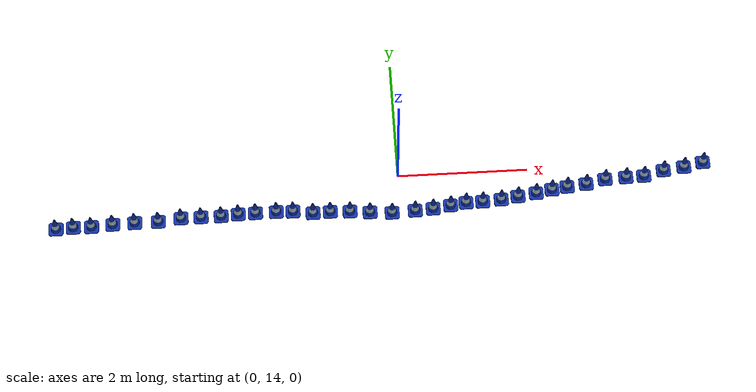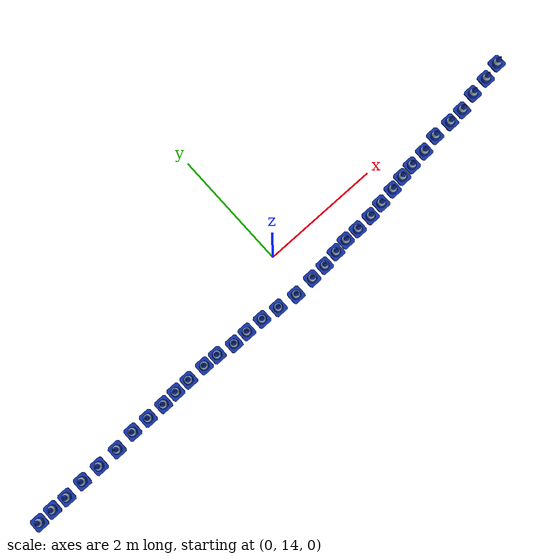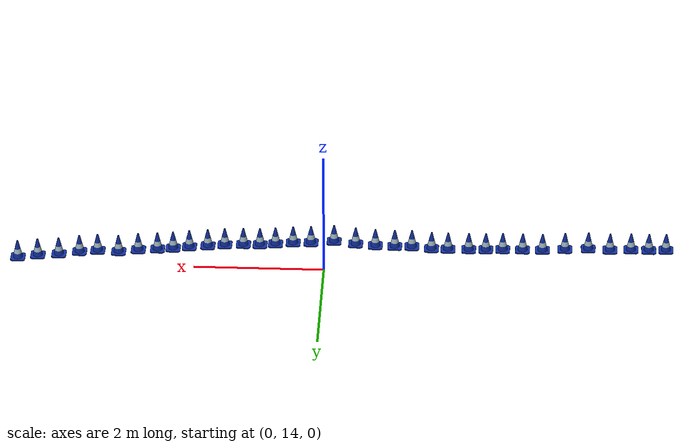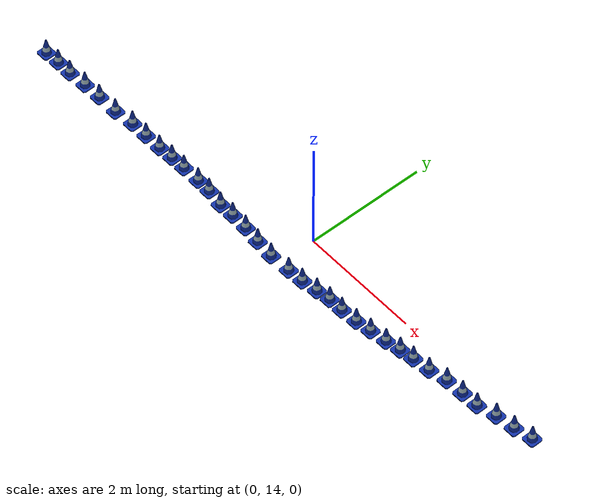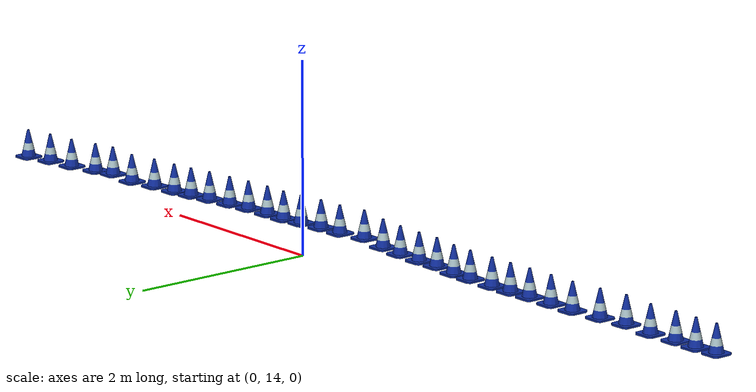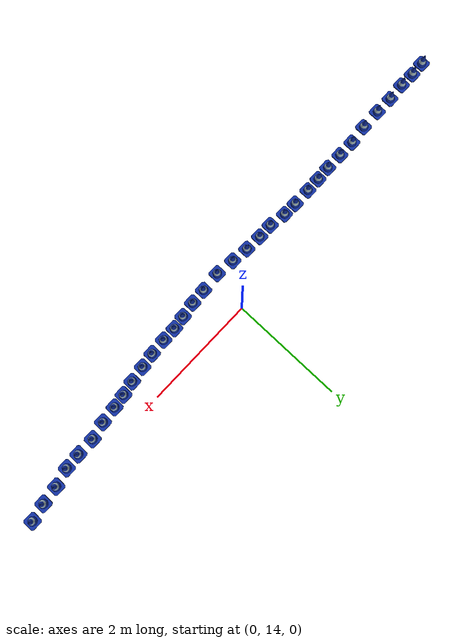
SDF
<sdf version="1.6">
 <model name="small_track">
  <link name="link_0_clone_3">
   <pose>-4.06552 13.3637 0.079001 0 -0 0</pose>
   <visual name="visual">
    <geometry><mesh><uri>model://eufs_description/meshes/cone_blue.dae</uri></mesh></geometry>
    <material><shader type="pixel"/></material>
   </visual>
  </link>
  <link name="link_0_clone_5">
   <pose>-0.131239 13.3125 0.079001 0 -0 0</pose>
   <visual name="visual">
    <geometry><mesh><uri>model://eufs_description/meshes/cone_blue.dae</uri></mesh></geometry>
    <material><shader type="pixel"/></material>
   </visual>
  </link>
  <link name="link_0_clone_62_clone_32">
   <pose>-5.26559 13.3306 0.063291 -0.001555 0.00019 -5.2e-05</pose>
   <visual name="visual">
    <geometry><mesh><uri>model://eufs_description/meshes/cone_blue.dae</uri></mesh></geometry>
    <material><shader type="pixel"/></material>
   </visual>
  </link>
  <link name="link_0_clone_62_clone_33">
   <pose>-5.00103 13.3437 0.063291 -0.001555 0.00019 -5.2e-05</pose>
   <visual name="visual">
    <geometry><mesh><uri>model://eufs_description/meshes/cone_blue.dae</uri></mesh></geometry>
    <material><shader type="pixel"/></material>
   </visual>
  </link>
  <link name="link_0_clone_62_clone_34">
   <pose>-4.72483 13.3408 0.063291 -0.001555 0.00019 -5.2e-05</pose>
   <visual name="visual">
    <geometry><mesh><uri>model://eufs_description/meshes/cone_blue.dae</uri></mesh></geometry>
    <material><shader type="pixel"/></material>
   </visual>
  </link>
  <link name="link_0_clone_62_clone_35">
   <pose>-4.40083 13.3623 0.063291 -0.001555 0.00019 -5.2e-05</pose>
   <visual name="visual">
    <geometry><mesh><uri>model://eufs_description/meshes/cone_blue.dae</uri></mesh></geometry>
    <material><shader type="pixel"/></material>
   </visual>
  </link>
  <link name="link_0_clone_62_clone_36">
   <pose>-0.467814 13.3483 0.063291 -0.001555 0.00019 -5.2e-05</pose>
   <visual name="visual">
    <geometry><mesh><uri>model://eufs_description/meshes/cone_blue.dae</uri></mesh></geometry>
    <material><shader type="pixel"/></material>
   </visual>
  </link>
  <link name="link_0_clone_62_clone_37">
   <pose>-0.773533 13.3816 0.063291 -0.001555 0.00019 -5.2e-05</pose>
   <visual name="visual">
    <geometry><mesh><uri>model://eufs_description/meshes/cone_blue.dae</uri></mesh></geometry>
    <material><shader type="pixel"/></material>
   </visual>
  </link>
  <link name="link_0_clone_62_clone_38">
   <pose>-1.07496 13.3931 0.063291 -0.001555 0.00019 -5.2e-05</pose>
   <visual name="visual">
    <geometry><mesh><uri>model://eufs_description/meshes/cone_blue.dae</uri></mesh></geometry>
    <material><shader type="pixel"/></material>
   </visual>
  </link>
  <link name="link_0_clone_62_clone_39">
   <pose>-1.33999 13.3874 0.063291 -0.001555 0.00019 -5.2e-05</pose>
   <visual name="visual">
    <geometry><mesh><uri>model://eufs_description/meshes/cone_blue.dae</uri></mesh></geometry>
    <material><shader type="pixel"/></material>
   </visual>
  </link>
  <link name="link_0_clone_62_clone_40">
   <pose>-1.64549 13.4317 0.063291 -0.001555 0.00019 -5.2e-05</pose>
   <visual name="visual">
    <geometry><mesh><uri>model://eufs_description/meshes/cone_blue.dae</uri></mesh></geometry>
    <material><shader type="pixel"/></material>
   </visual>
  </link>
  <link name="link_0_clone_62_clone_41">
   <pose>-1.90051 13.4388 0.063291 -0.001555 0.00019 -5.2e-05</pose>
   <visual name="visual">
    <geometry><mesh><uri>model://eufs_description/meshes/cone_blue.dae</uri></mesh></geometry>
    <material><shader type="pixel"/></material>
   </visual>
  </link>
  <link name="link_0_clone_62_clone_42">
   <pose>-2.21997 13.436 0.063291 -0.001555 0.00019 -5.2e-05</pose>
   <visual name="visual">
    <geometry><mesh><uri>model://eufs_description/meshes/cone_blue.dae</uri></mesh></geometry>
    <material><shader type="pixel"/></material>
   </visual>
  </link>
  <link name="link_0_clone_62_clone_43">
   <pose>-2.48355 13.4302 0.063291 -0.001555 0.00019 -5.2e-05</pose>
   <visual name="visual">
    <geometry><mesh><uri>model://eufs_description/meshes/cone_blue.dae</uri></mesh></geometry>
    <material><shader type="pixel"/></material>
   </visual>
  </link>
  <link name="link_0_clone_62_clone_44">
   <pose>-2.74536 13.4137 0.063291 -0.001555 0.00019 -5.2e-05</pose>
   <visual name="visual">
    <geometry><mesh><uri>model://eufs_description/meshes/cone_blue.dae</uri></mesh></geometry>
    <material><shader type="pixel"/></material>
   </visual>
  </link>
  <link name="link_0_clone_62_clone_45">
   <pose>-3.05297 13.4125 0.063291 -0.001555 0.00019 -5.2e-05</pose>
   <visual name="visual">
    <geometry><mesh><uri>model://eufs_description/meshes/cone_blue.dae</uri></mesh></geometry>
    <material><shader type="pixel"/></material>
   </visual>
  </link>
  <link name="link_0_clone_62_clone_46">
   <pose>-3.3601 13.4116 0.063291 -0.001555 0.00019 -5.2e-05</pose>
   <visual name="visual">
    <geometry><mesh><uri>model://eufs_description/meshes/cone_blue.dae</uri></mesh></geometry>
    <material><shader type="pixel"/></material>
   </visual>
  </link>
  <link name="link_0_clone_62_clone_47">
   <pose>-3.70604 13.3715 0.063291 -0.001555 0.00019 -5.2e-05</pose>
   <visual name="visual">
    <geometry><mesh><uri>model://eufs_description/meshes/cone_blue.dae</uri></mesh></geometry>
    <material><shader type="pixel"/></material>
   </visual>
  </link>
  <link name="link_0_clone_62_clone_48">
   <pose>0.224829 13.338 0.063291 -0.001555 0.00019 -5.2e-05</pose>
   <visual name="visual">
    <geometry><mesh><uri>model://eufs_description/meshes/cone_blue.dae</uri></mesh></geometry>
    <material><shader type="pixel"/></material>
   </visual>
  </link>
  <link name="link_0_clone_62_clone_49">
   <pose>0.500636 13.3562 0.063291 -0.001555 0.00019 -5.2e-05</pose>
   <visual name="visual">
    <geometry><mesh><uri>model://eufs_description/meshes/cone_blue.dae</uri></mesh></geometry>
    <material><shader type="pixel"/></material>
   </visual>
  </link>
  <link name="link_0_clone_62_clone_50">
   <pose>0.77246 13.3965 0.063291 -0.001555 0.00019 -5.2e-05</pose>
   <visual name="visual">
    <geometry><mesh><uri>model://eufs_description/meshes/cone_blue.dae</uri></mesh></geometry>
    <material><shader type="pixel"/></material>
   </visual>
  </link>
  <link name="link_0_clone_62_clone_51">
   <pose>1.01166 13.4315 0.063291 -0.001555 0.00019 -5.2e-05</pose>
   <visual name="visual">
    <geometry><mesh><uri>model://eufs_description/meshes/cone_blue.dae</uri></mesh></geometry>
    <material><shader type="pixel"/></material>
   </visual>
  </link>
  <link name="link_0_clone_62_clone_52">
   <pose>1.26829 13.4357 0.063291 -0.001555 0.00019 -5.2e-05</pose>
   <visual name="visual">
    <geometry><mesh><uri>model://eufs_description/meshes/cone_blue.dae</uri></mesh></geometry>
    <material><shader type="pixel"/></material>
   </visual>
  </link>
  <link name="link_0_clone_62_clone_53">
   <pose>1.55555 13.4555 0.063291 -0.001555 0.00019 -5.2e-05</pose>
   <visual name="visual">
    <geometry><mesh><uri>model://eufs_description/meshes/cone_blue.dae</uri></mesh></geometry>
    <material><shader type="pixel"/></material>
   </visual>
  </link>
  <link name="link_0_clone_62_clone_54">
   <pose>1.81672 13.4944 0.063291 -0.001555 0.00019 -5.2e-05</pose>
   <visual name="visual">
    <geometry><mesh><uri>model://eufs_description/meshes/cone_blue.dae</uri></mesh></geometry>
    <material><shader type="pixel"/></material>
   </visual>
  </link>
  <link name="link_0_clone_62_clone_55">
   <pose>2.0997 13.5362 0.063291 -0.001555 0.00019 -5.2e-05</pose>
   <visual name="visual">
    <geometry><mesh><uri>model://eufs_description/meshes/cone_blue.dae</uri></mesh></geometry>
    <material><shader type="pixel"/></material>
   </visual>
  </link>
  <link name="link_0_clone_62_clone_56">
   <pose>2.34772 13.5841 0.063291 -0.001555 0.00019 -5.2e-05</pose>
   <visual name="visual">
    <geometry><mesh><uri>model://eufs_description/meshes/cone_blue.dae</uri></mesh></geometry>
    <material><shader type="pixel"/></material>
   </visual>
  </link>
  <link name="link_0_clone_62_clone_57">
   <pose>2.58708 13.6195 0.063291 -0.001555 0.00019 -5.2e-05</pose>
   <visual name="visual">
    <geometry><mesh><uri>model://eufs_description/meshes/cone_blue.dae</uri></mesh></geometry>
    <material><shader type="pixel"/></material>
   </visual>
  </link>
  <link name="link_0_clone_62_clone_58">
   <pose>2.88322 13.6519 0.063291 -0.001555 0.00019 -5.2e-05</pose>
   <visual name="visual">
    <geometry><mesh><uri>model://eufs_description/meshes/cone_blue.dae</uri></mesh></geometry>
    <material><shader type="pixel"/></material>
   </visual>
  </link>
  <link name="link_0_clone_62_clone_59">
   <pose>3.18294 13.7188 0.063291 -0.001555 0.00019 -5.2e-05</pose>
   <visual name="visual">
    <geometry><mesh><uri>model://eufs_description/meshes/cone_blue.dae</uri></mesh></geometry>
    <material><shader type="pixel"/></material>
   </visual>
  </link>
  <link name="link_0_clone_62_clone_60">
   <pose>3.78613 13.7422 0.063291 -0.001555 0.00019 -5.2e-05</pose>
   <visual name="visual">
    <geometry><mesh><uri>model://eufs_description/meshes/cone_blue.dae</uri></mesh></geometry>
    <material><shader type="pixel"/></material>
   </visual>
  </link>
  <link name="link_0_clone_62_clone_61">
   <pose>4.09884 13.8225 0.063291 -0.001555 0.00019 -5.2e-05</pose>
   <visual name="visual">
    <geometry><mesh><uri>model://eufs_description/meshes/cone_blue.dae</uri></mesh></geometry>
    <material><shader type="pixel"/></material>
   </visual>
  </link>
  <link name="link_0_clone_62_clone_62">
   <pose>4.42075 13.8644 0.063291 -0.001555 0.00019 -5.2e-05</pose>
   <visual name="visual">
    <geometry><mesh><uri>model://eufs_description/meshes/cone_blue.dae</uri></mesh></geometry>
    <material><shader type="pixel"/></material>
   </visual>
  </link>
  <link name="link_0_clone_62_clone_63">
   <pose>4.72304 13.9317 0.063291 -0.001555 0.00019 -5.2e-05</pose>
   <visual name="visual">
    <geometry><mesh><uri>model://eufs_description/meshes/cone_blue.dae</uri></mesh></geometry>
    <material><shader type="pixel"/></material>
   </visual>
  </link>
  <link name="link_0_clone_7">
   <pose>3.50416 13.7245 0.080395 0 -0 0</pose>
   <visual name="visual">
    <geometry><mesh><uri>model://eufs_description/meshes/cone_blue.dae</uri></mesh></geometry>
    <material><shader type="pixel"/></material>
   </visual>
  </link>
  <static>1</static>
 </model>
</sdf>
